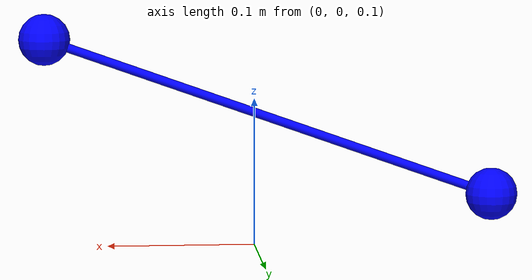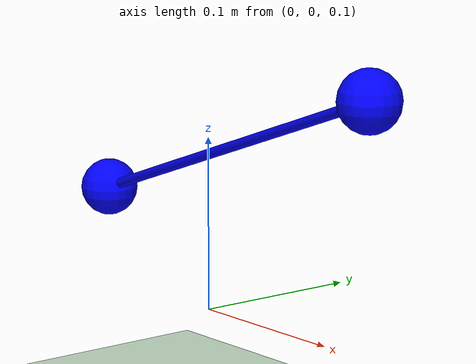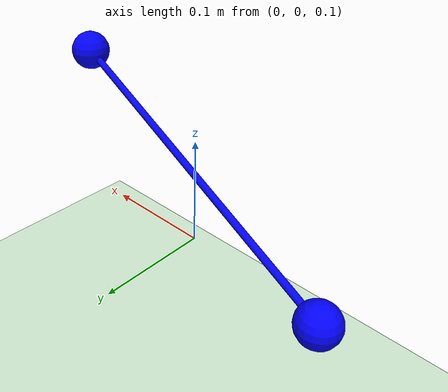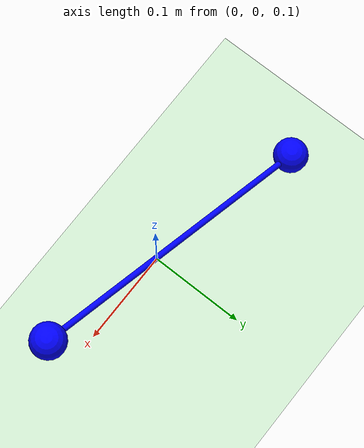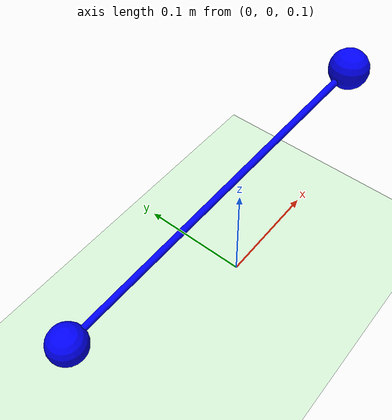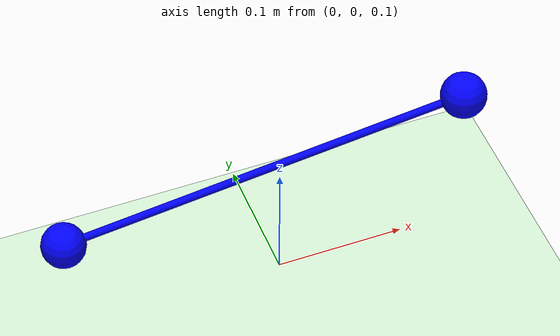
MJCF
<!--
  ~ Copyright (c) 2020.  -  present.  Kun Wang. All Rights Reserved.
  -->

<mujoco model="TT (v1.31)">
    <compiler angle="degree" coordinate="global" inertiafromgeom="true">
             <lengthrange timestep="0.001"/>
    </compiler>

    <option timestep="0.001"
            gravity="0 0 -9.81"
            solver="Newton"
            integrator="Euler"
            iterations="10000">
        <flag sensornoise="disable"
            frictionloss="disable"/>
    </option>

    <visual>
        <global offwidth="1280" offheight="720"/>
    </visual>

    <default>
        <geom conaffinity="1" condim="3" contype="1" material="geom" rgba="1 .84 0 1" size="0.014"
              density="1000" friction="0.7 0.8 0.7"/>
        <site type="sphere" size="0.005"/>
        <tendon width="0.1" rgba="1 0 0 1" damping="10" stiffness="100"/>
        <position ctrllimited="true" ctrlrange="-100 100"/>
    </default>

    <asset>
        <texture builtin="gradient" height="100" rgb1="1 1 1" rgb2="0 0 0" type="skybox"
                 width="100"/>
        <texture builtin="flat" height="1278" mark="cross" markrgb="1 1 1" name="texgeom"
                 random="0.01" rgb1="0.8 0.6 0.4" rgb2="0.8 0.6 0.4" type="cube" width="127"/>
        <texture builtin="checker" height="100" name="texplane" rgb1="0 0 0" rgb2="0.8 0.8 0.8"
                 type="2d" width="100"/>
        <material name="MatPlane" reflectance="0.5" shininess="1" specular="1" texrepeat="30 30"
                  texture="texplane"/>
        <material name="geom" texture="texgeom" texuniform="true"/>
    </asset>

    <worldbody>

        <light cutoff="100" diffuse="1 1 1" dir="-0 0 -1.3" directional="true" exponent="1"
               pos="0 0 1.3" specular=".1 .1 .1"/>
        <geom conaffinity="1" condim="3" material="MatPlane" name="floor" pos="0 0 0"
              rgba="0.8 0.9 0.8 1" size="4 4 0.10" type="plane" friction="0.7 0.8 0.7"/>

        <camera name="camera" pos="-0.005 -1.286 0.429" xyaxes="1.000 -0.004 -0.000 0.001 0.316 0.949"/>

        <!-- ======= RODS ======= -->
        <body name="r01">
            <geom name="r01"
                  fromto="-0.15615713  0.04465967  0.13983528  0.141844076 -0.00698952  0.24071881"
                  size="0.003"
                  type="cylinder"
                  solref="-5000 -40"
                  rgba="0 0 1 1"
                  mass="0.0038"/>
            <freejoint name="move4_5"/>
            <geom name="s0"
                  pos="-0.15615713  0.04465967  0.13983528"
                  size="0.0175"
                  type="sphere"
                  solref="-5000 -40"
                  rgba="0 0 1 1"
                  mass="0.0105"/>
            <geom name="s1"
                  pos="0.141844076 -0.00698952  0.24071881"
                  size="0.0175"
                  type="sphere"
                  solref="-5000 -40"
                  rgba="0 0 1 1"
                  mass="0.0105"/>
<!--                  fromto="-0.09289449  0.03393253  0.16078802 -0.13506959  0.04108395  0.14681953"-->
<!--                  size="0.0175"-->
<!--                  type="cylinder"-->
<!--                  solref="-5000 -40"-->
<!--                  rgba="0 0 0 1"-->
<!--                  fromto="0.08517812 0.00373762 0.21976608  0.12735321 -0.00341381  0.23373457"-->
<!--                  size="0.0175"-->
<!--                  type="cylinder"-->
<!--                  solref="-5000 -40"-->
<!--                  rgba="0 0 0 1"-->
        </body>

        <body name="r23">
            <geom name="r23"
                  fromto="-0.15615713  0.04465967  0.13983528  0.141844076 -0.00698952  0.24071881"
                  size="0.003"
                  type="cylinder"
                  solref="-5000 -40"
                  rgba="1 0 0 0.3"
                  mass="0.0038"/>
            <freejoint name="move0_1"/>
            <geom name="s2"
                  pos="-0.15615713  0.04465967  0.13983528"
                  size="0.0175"
                  type="sphere"
                  solref="-5000 -40"
                  rgba="1 0 0 0.3"
                  mass="0.0105"/>
            <geom name="s3"
                  pos="0.141844076 -0.00698952  0.24071881"
                  size="0.0175"
                  type="sphere"
                  solref="-5000 -40"
                  rgba="1 0 0 0.3"
                  mass="0.0105"/>
<!--                  fromto="-0.09289449  0.03393253  0.16078802 -0.13506959  0.04108395  0.14681953"-->
<!--                  size="0.0175"-->
<!--                  type="cylinder"-->
<!--                  solref="-5000 -40"-->
<!--                  rgba="0 0 0 1"-->
<!--                  fromto="0.08517812 0.00373762 0.21976608  0.12735321 -0.00341381  0.23373457"-->
<!--                  size="0.0175"-->
<!--                  type="cylinder"-->
<!--                  solref="-5000 -40"-->
<!--                  rgba="0 0 0 1"-->
        </body>
    </worldbody>
    <sensor>
        <framepos name="pos" objname="r01" objtype="body"/>
        <framelinvel name="linvel" objname="r01" objtype="body"/>
        <frameangvel name="angvel" objname="r01" objtype="body"/>
        <framequat name="quat" objname="r01" objtype="body"/>

    </sensor>

</mujoco>
